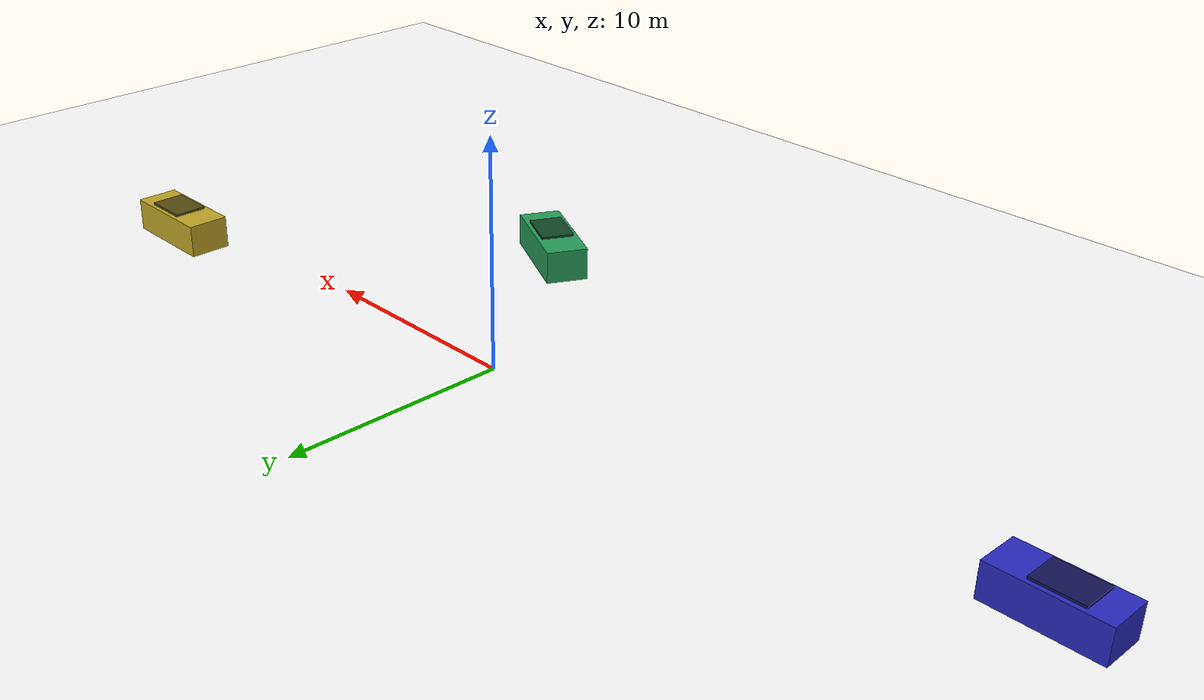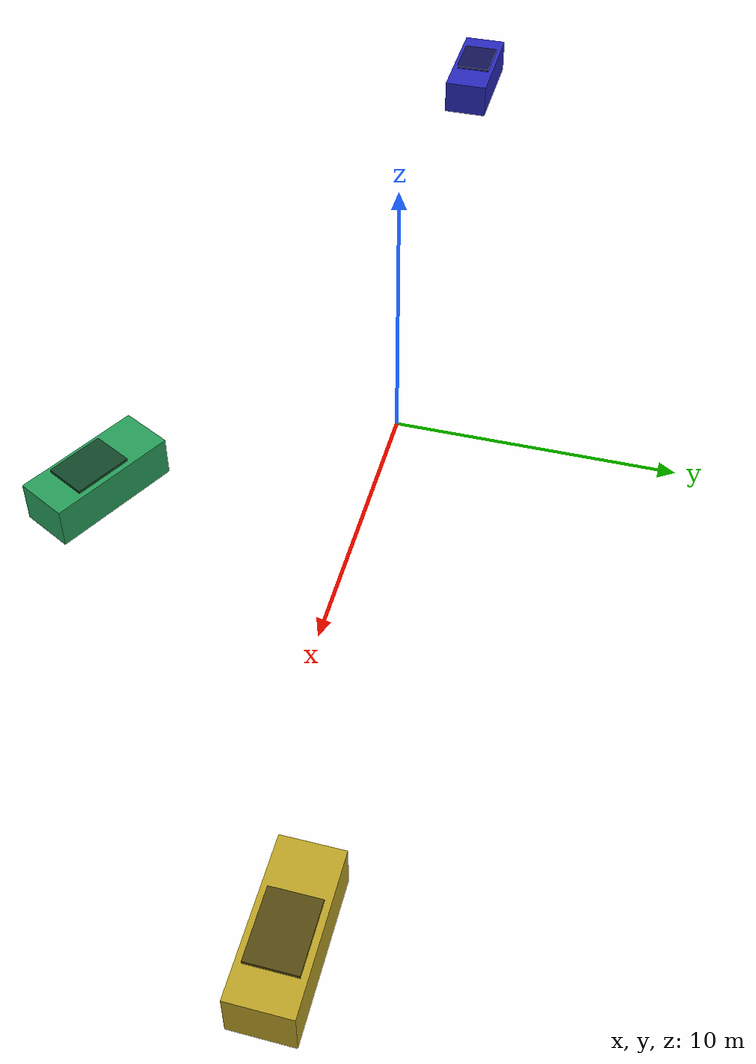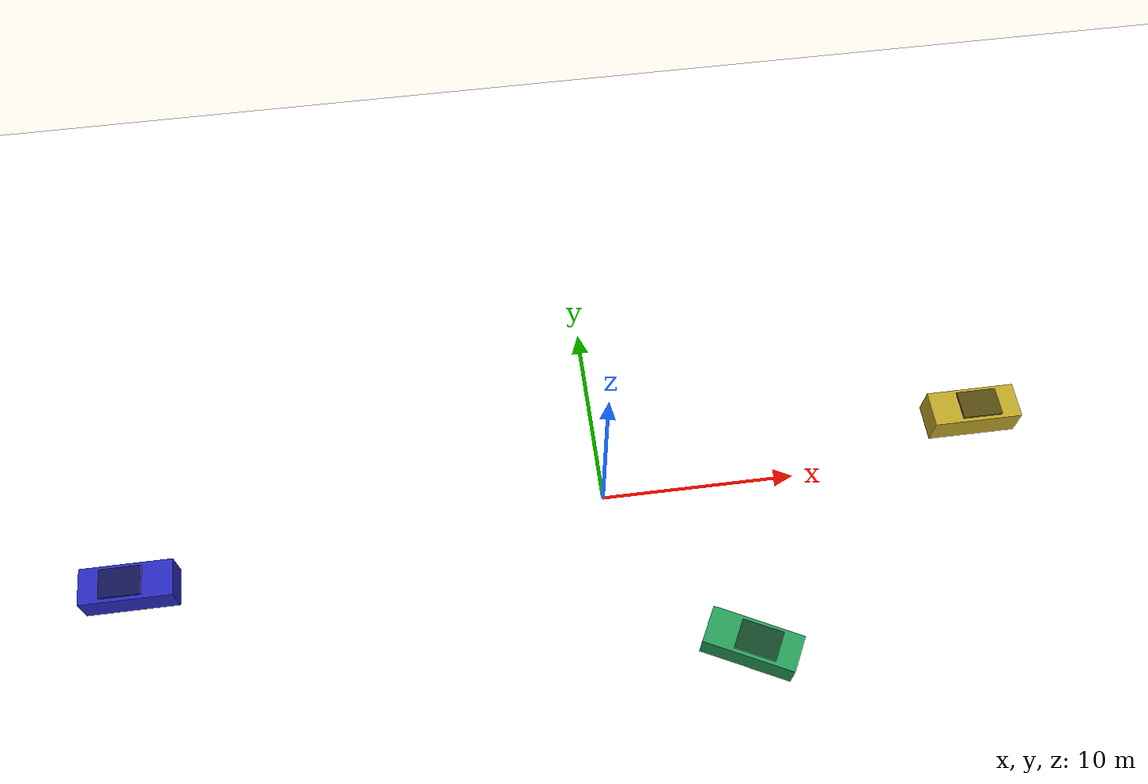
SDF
<?xml version="1.0" ?>
<!-- URETILMISTIR - elle duzenlemeyin. Kaynak: gazebo/dunya_uret.py -->
<sdf version="1.9">
  <world name="A5_kucul_yaw">
    <physics name="varsayilan" type="ignored">
      <max_step_size>0.004166666666666667</max_step_size>
      <real_time_factor>1.0</real_time_factor>
    </physics>
    <plugin filename="gz-sim-physics-system" name="gz::sim::systems::Physics"/>
    <plugin filename="gz-sim-sensors-system" name="gz::sim::systems::Sensors">
      <render_engine>ogre2</render_engine>
      <background_color>0.55 0.65 0.80</background_color>
    </plugin>
    <plugin filename="gz-sim-imu-system" name="gz::sim::systems::Imu"/>
    <plugin filename="gz-sim-scene-broadcaster-system"
            name="gz::sim::systems::SceneBroadcaster"/>
    <plugin filename="gz-sim-user-commands-system"
            name="gz::sim::systems::UserCommands"/>

    <gravity>0 0 -9.8</gravity>
    <scene>
      <ambient>0.75 0.75 0.75 1</ambient>
      <background>0.55 0.65 0.80</background>
      <shadows>false</shadows>
    </scene>
    <light type="directional" name="gunes">
      <cast_shadows>false</cast_shadows>
      <pose>0 0 120 0 0 0</pose>
      <diffuse>0.9 0.9 0.9 1</diffuse>
      <specular>0.15 0.15 0.15 1</specular>
      <direction>-0.35 0.25 -0.90</direction>
    </light>

    <!-- zemin: tek buyuk kutu + uretilmis albedo dokusu -->
    <model name="zemin">
      <static>true</static>
      <pose>0 0 -0.10 0 0 0</pose>
      <link name="l">
        <collision name="c">
          <geometry><box><size>560.0 560.0 0.2</size></box></geometry>
        </collision>
        <visual name="v">
          <geometry><box><size>560.0 560.0 0.2</size></box></geometry>
          <material>
            <ambient>1 1 1 1</ambient>
            <diffuse>1 1 1 1</diffuse>
            <specular>0 0 0 1</specular>
            <pbr><metal>
              <albedo_map>zemin.png</albedo_map>
              <metalness>0.0</metalness>
              <roughness>1.0</roughness>
            </metal></pbr>
          </material>
        </visual>
      </link>
    </model>

    <model name="hedef">
      <static>false</static>
      <pose>-24.0 -2.2 0.75 0 0 0.0</pose>
      <link name="govde">
        <gravity>false</gravity>
        <inertial>
          <mass>1200</mass>
          <inertia><ixx>500</ixx><iyy>2000</iyy><izz>2200</izz>
                   <ixy>0</ixy><ixz>0</ixz><iyz>0</iyz></inertia>
        </inertial>
        <visual name="kasa">
          <geometry><box><size>4.6 1.9 1.5</size></box></geometry>
          <material>
            <ambient>0.16 0.16 0.75 1</ambient>
            <diffuse>0.16 0.16 0.75 1</diffuse>
            <specular>0.2 0.2 0.2 1</specular>
          </material>
        </visual>
        <visual name="tavan">
          <pose>-0.25 0 0.63 0 0 0</pose>
          <geometry><box><size>2.07 1.52 0.44999999999999996</size></box></geometry>
          <material>
            <ambient>0.07200000000000001 0.07200000000000001 0.3375 1</ambient>
            <diffuse>0.07200000000000001 0.07200000000000001 0.3375 1</diffuse>
          </material>
        </visual>
      </link>
      <plugin filename="gz-sim-velocity-control-system"
              name="gz::sim::systems::VelocityControl">
        <initial_linear>4.8 0.0 0.0</initial_linear>
        <initial_angular>0.0 0.0 0.0</initial_angular>
      </plugin>
      <plugin filename="gz-sim-pose-publisher-system"
              name="gz::sim::systems::PosePublisher">
        <publish_link_pose>false</publish_link_pose>
        <publish_visual_pose>false</publish_visual_pose>
        <publish_collision_pose>false</publish_collision_pose>
        <publish_sensor_pose>false</publish_sensor_pose>
        <publish_model_pose>true</publish_model_pose>
        <publish_nested_model_pose>false</publish_nested_model_pose>
        <use_pose_vector_msg>true</use_pose_vector_msg>
        <static_publisher>false</static_publisher>
        <update_frequency>120</update_frequency>
      </plugin>
    </model>

    <model name="celdirici">
      <static>false</static>
      <pose>20.0 2.2 0.75 0 0 3.141592653589793</pose>
      <link name="govde">
        <gravity>false</gravity>
        <inertial>
          <mass>1200</mass>
          <inertia><ixx>500</ixx><iyy>2000</iyy><izz>2200</izz>
                   <ixy>0</ixy><ixz>0</ixz><iyz>0</iyz></inertia>
        </inertial>
        <visual name="kasa">
          <geometry><box><size>4.6 1.9 1.5</size></box></geometry>
          <material>
            <ambient>0.75 0.65 0.15 1</ambient>
            <diffuse>0.75 0.65 0.15 1</diffuse>
            <specular>0.2 0.2 0.2 1</specular>
          </material>
        </visual>
        <visual name="tavan">
          <pose>-0.25 0 0.63 0 0 0</pose>
          <geometry><box><size>2.07 1.52 0.44999999999999996</size></box></geometry>
          <material>
            <ambient>0.3375 0.29250000000000004 0.0675 1</ambient>
            <diffuse>0.3375 0.29250000000000004 0.0675 1</diffuse>
          </material>
        </visual>
      </link>
      <plugin filename="gz-sim-velocity-control-system"
              name="gz::sim::systems::VelocityControl">
        <initial_linear>3.5 0.0 0.0</initial_linear>
        <initial_angular>0.0 0.0 0.0</initial_angular>
      </plugin>
      <plugin filename="gz-sim-pose-publisher-system"
              name="gz::sim::systems::PosePublisher">
        <publish_link_pose>false</publish_link_pose>
        <publish_visual_pose>false</publish_visual_pose>
        <publish_collision_pose>false</publish_collision_pose>
        <publish_sensor_pose>false</publish_sensor_pose>
        <publish_model_pose>true</publish_model_pose>
        <publish_nested_model_pose>false</publish_nested_model_pose>
        <use_pose_vector_msg>true</use_pose_vector_msg>
        <static_publisher>false</static_publisher>
        <update_frequency>120</update_frequency>
      </plugin>
    </model>

    <model name="celdirici2">
      <static>false</static>
      <pose>6.0 -9.0 0.75 0 0 2.670353755551324</pose>
      <link name="govde">
        <gravity>false</gravity>
        <inertial>
          <mass>1200</mass>
          <inertia><ixx>500</ixx><iyy>2000</iyy><izz>2200</izz>
                   <ixy>0</ixy><ixz>0</ixz><iyz>0</iyz></inertia>
        </inertial>
        <visual name="kasa">
          <geometry><box><size>4.6 1.9 1.5</size></box></geometry>
          <material>
            <ambient>0.15 0.62 0.35 1</ambient>
            <diffuse>0.15 0.62 0.35 1</diffuse>
            <specular>0.2 0.2 0.2 1</specular>
          </material>
        </visual>
        <visual name="tavan">
          <pose>-0.25 0 0.63 0 0 0</pose>
          <geometry><box><size>2.07 1.52 0.44999999999999996</size></box></geometry>
          <material>
            <ambient>0.0675 0.279 0.1575 1</ambient>
            <diffuse>0.0675 0.279 0.1575 1</diffuse>
          </material>
        </visual>
      </link>
      <plugin filename="gz-sim-velocity-control-system"
              name="gz::sim::systems::VelocityControl">
        <initial_linear>4.2 0.0 0.0</initial_linear>
        <initial_angular>0.0 0.0 0.0</initial_angular>
      </plugin>
      <plugin filename="gz-sim-pose-publisher-system"
              name="gz::sim::systems::PosePublisher">
        <publish_link_pose>false</publish_link_pose>
        <publish_visual_pose>false</publish_visual_pose>
        <publish_collision_pose>false</publish_collision_pose>
        <publish_sensor_pose>false</publish_sensor_pose>
        <publish_model_pose>true</publish_model_pose>
        <publish_nested_model_pose>false</publish_nested_model_pose>
        <use_pose_vector_msg>true</use_pose_vector_msg>
        <static_publisher>false</static_publisher>
        <update_frequency>120</update_frequency>
      </plugin>
    </model>

    <model name="drone">
      <static>false</static>
      <pose>-24.0 0.0 38.3 0 0 0</pose>
      <link name="govde">
        <gravity>false</gravity>
        <inertial>
          <mass>2.0</mass>
          <inertia><ixx>0.05</ixx><iyy>0.05</iyy><izz>0.08</izz>
                   <ixy>0</ixy><ixz>0</ixz><iyz>0</iyz></inertia>
        </inertial>
        <sensor name="kam" type="camera">
          <pose>0 0 0 0.0 1.5707963267948966 1.5707963267948966</pose>
          <always_on>1</always_on>
          <update_rate>30.0</update_rate>
          <topic>kamera</topic>
          <camera>
            <horizontal_fov>1.1386263822013238</horizontal_fov>
            <image>
              <width>640</width><height>480</height><format>R8G8B8</format>
            </image>
            <clip><near>0.5</near><far>800</far></clip>
            <noise><type>gaussian</type><mean>0</mean><stddev>0.007</stddev></noise>
          </camera>
        </sensor>
        <sensor name="imu" type="imu">
          <always_on>1</always_on>
          <update_rate>200.0</update_rate>
          <topic>imu</topic>
        </sensor>
      </link>
      <plugin filename="gz-sim-velocity-control-system"
              name="gz::sim::systems::VelocityControl">
        <initial_linear>4.8 0.0 12.459999999999999</initial_linear>
        <initial_angular>0.0 0.0 0.8224670334241131</initial_angular>
      </plugin>
      <plugin filename="gz-sim-pose-publisher-system"
              name="gz::sim::systems::PosePublisher">
        <publish_link_pose>false</publish_link_pose>
        <publish_visual_pose>false</publish_visual_pose>
        <publish_collision_pose>false</publish_collision_pose>
        <publish_sensor_pose>false</publish_sensor_pose>
        <publish_model_pose>true</publish_model_pose>
        <publish_nested_model_pose>false</publish_nested_model_pose>
        <use_pose_vector_msg>true</use_pose_vector_msg>
        <static_publisher>false</static_publisher>
        <update_frequency>120</update_frequency>
      </plugin>
    </model>
  </world>
</sdf>
